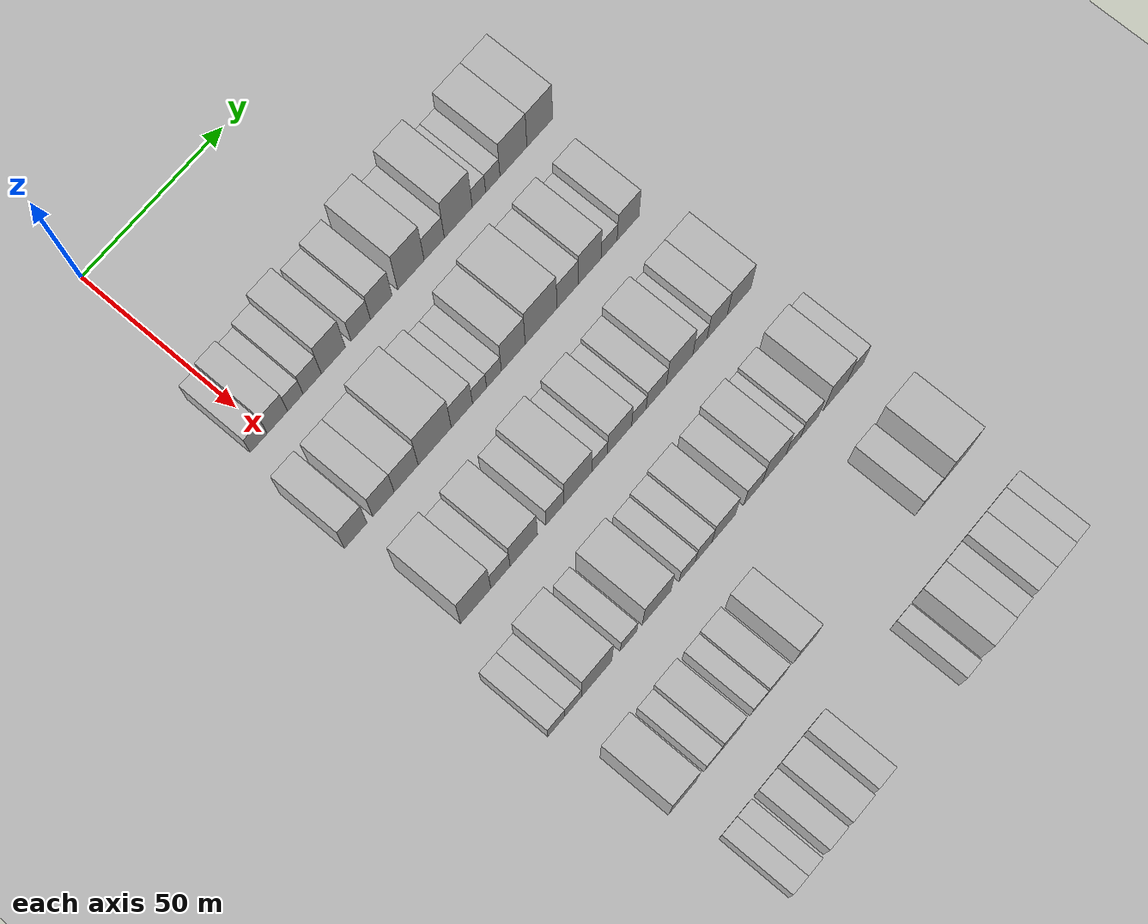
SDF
<sdf version="1.6">
 <world name="default">
  <include><name>ground_plane_1</name><uri>model://HANNAS_ground_plane</uri></include>
  <include>
   <name>ground_plane_2</name>
   <uri>model://HANNAS_ground_plane</uri>
   <pose>100 0 0  0 0 0</pose>
  </include>
  <model name="building_58">
   <static>1</static>
   <pose>50.0000 -3.0111 0 0.000000 0.000000 0.000000</pose>
   <link name="link">
    <pose>0 0 6.00 0 0 0</pose>
    <collision name="collision"><geometry><box><size>20.0000 5.9916 12.0000</size></box></geometry></collision>
    <visual name="visual">
     <cast_shadows>0</cast_shadows>
     <geometry><box><size>20.0000 5.9916 12.0000</size></box></geometry>
     <material>
      <script>
       <uri>model://HANNAS_wall/materials/scripts</uri>
       <uri>model://HANNAS_wall/materials/textures</uri>
       <name>vrc/HANNAS_wall</name>
      </script>
     </material>
    </visual>
   </link>
  </model>
  <model name="building_59">
   <static>1</static>
   <pose>50.0000 3.5411 0 0.000000 0.000000 0.000000</pose>
   <link name="link">
    <pose>0 0 7.50 0 0 0</pose>
    <collision name="collision"><geometry><box><size>20.0000 7.1128 15.0000</size></box></geometry></collision>
    <visual name="visual">
     <cast_shadows>0</cast_shadows>
     <geometry><box><size>20.0000 7.1128 15.0000</size></box></geometry>
     <material>
      <script>
       <uri>model://HANNAS_wall/materials/scripts</uri>
       <uri>model://HANNAS_wall/materials/textures</uri>
       <name>vrc/HANNAS_wall</name>
      </script>
     </material>
    </visual>
   </link>
  </model>
  <model name="building_60">
   <static>1</static>
   <pose>50.0000 9.8182 0 0.000000 0.000000 0.000000</pose>
   <link name="link">
    <pose>0 0 6.00 0 0 0</pose>
    <collision name="collision"><geometry><box><size>20.0000 5.4413 12.0000</size></box></geometry></collision>
    <visual name="visual">
     <cast_shadows>0</cast_shadows>
     <geometry><box><size>20.0000 5.4413 12.0000</size></box></geometry>
     <material>
      <script>
       <uri>model://HANNAS_wall/materials/scripts</uri>
       <uri>model://HANNAS_wall/materials/textures</uri>
       <name>vrc/HANNAS_wall</name>
      </script>
     </material>
    </visual>
   </link>
  </model>
  <model name="building_61">
   <static>1</static>
   <pose>50.0000 15.7599 0 0.000000 0.000000 0.000000</pose>
   <link name="link">
    <pose>0 0 7.50 0 0 0</pose>
    <collision name="collision"><geometry><box><size>20.0000 6.4422 15.0000</size></box></geometry></collision>
    <visual name="visual">
     <cast_shadows>0</cast_shadows>
     <geometry><box><size>20.0000 6.4422 15.0000</size></box></geometry>
     <material>
      <script>
       <uri>model://HANNAS_wall/materials/scripts</uri>
       <uri>model://HANNAS_wall/materials/textures</uri>
       <name>vrc/HANNAS_wall</name>
      </script>
     </material>
    </visual>
   </link>
  </model>
  <model name="building_62">
   <static>1</static>
   <pose>50.0000 23.2361 0 0.000000 0.000000 0.000000</pose>
   <link name="link">
    <pose>0 0 10.50 0 0 0</pose>
    <collision name="collision"><geometry><box><size>20.0000 8.5100 21.0000</size></box></geometry></collision>
    <visual name="visual">
     <cast_shadows>0</cast_shadows>
     <geometry><box><size>20.0000 8.5100 21.0000</size></box></geometry>
     <material>
      <script>
       <uri>model://HANNAS_wall/materials/scripts</uri>
       <uri>model://HANNAS_wall/materials/textures</uri>
       <name>vrc/HANNAS_wall</name>
      </script>
     </material>
    </visual>
   </link>
  </model>
  <model name="building_63">
   <static>1</static>
   <pose>50.0000 32.9809 0 0.000000 0.000000 0.000000</pose>
   <link name="link">
    <pose>0 0 7.50 0 0 0</pose>
    <collision name="collision"><geometry><box><size>20.0000 6.9796 15.0000</size></box></geometry></collision>
    <visual name="visual">
     <cast_shadows>0</cast_shadows>
     <geometry><box><size>20.0000 6.9796 15.0000</size></box></geometry>
     <material>
      <script>
       <uri>model://HANNAS_wall/materials/scripts</uri>
       <uri>model://HANNAS_wall/materials/textures</uri>
       <name>vrc/HANNAS_wall</name>
      </script>
     </material>
    </visual>
   </link>
  </model>
  <model name="building_64">
   <static>1</static>
   <pose>50.0000 40.3442 0 0.000000 0.000000 0.000000</pose>
   <link name="link">
    <pose>0 0 9.00 0 0 0</pose>
    <collision name="collision"><geometry><box><size>20.0000 7.7471 18.0000</size></box></geometry></collision>
    <visual name="visual">
     <cast_shadows>0</cast_shadows>
     <geometry><box><size>20.0000 7.7471 18.0000</size></box></geometry>
     <material>
      <script>
       <uri>model://HANNAS_wall/materials/scripts</uri>
       <uri>model://HANNAS_wall/materials/textures</uri>
       <name>vrc/HANNAS_wall</name>
      </script>
     </material>
    </visual>
   </link>
  </model>
  <model name="building_65">
   <static>1</static>
   <pose>50.0000 51.0409 0 0.000000 0.000000 0.000000</pose>
   <link name="link">
    <pose>0 0 12.00 0 0 0</pose>
    <collision name="collision"><geometry><box><size>20.0000 9.6463 24.0000</size></box></geometry></collision>
    <visual name="visual">
     <cast_shadows>0</cast_shadows>
     <geometry><box><size>20.0000 9.6463 24.0000</size></box></geometry>
     <material>
      <script>
       <uri>model://HANNAS_wall/materials/scripts</uri>
       <uri>model://HANNAS_wall/materials/textures</uri>
       <name>vrc/HANNAS_wall</name>
      </script>
     </material>
    </visual>
   </link>
  </model>
  <model name="building_66">
   <static>1</static>
   <pose>50.0000 59.5326 0 0.000000 0.000000 0.000000</pose>
   <link name="link">
    <pose>0 0 7.50 0 0 0</pose>
    <collision name="collision"><geometry><box><size>20.0000 7.3370 15.0000</size></box></geometry></collision>
    <visual name="visual">
     <cast_shadows>0</cast_shadows>
     <geometry><box><size>20.0000 7.3370 15.0000</size></box></geometry>
     <material>
      <script>
       <uri>model://HANNAS_wall/materials/scripts</uri>
       <uri>model://HANNAS_wall/materials/textures</uri>
       <name>vrc/HANNAS_wall</name>
      </script>
     </material>
    </visual>
   </link>
  </model>
  <model name="building_67">
   <static>1</static>
   <pose>50.0000 68.3051 0 0.000000 0.000000 0.000000</pose>
   <link name="link">
    <pose>0 0 12.00 0 0 0</pose>
    <collision name="collision"><geometry><box><size>20.0000 10.2081 24.0000</size></box></geometry></collision>
    <visual name="visual">
     <cast_shadows>0</cast_shadows>
     <geometry><box><size>20.0000 10.2081 24.0000</size></box></geometry>
     <material>
      <script>
       <uri>model://HANNAS_wall/materials/scripts</uri>
       <uri>model://HANNAS_wall/materials/textures</uri>
       <name>vrc/HANNAS_wall</name>
      </script>
     </material>
    </visual>
   </link>
  </model>
  <model name="building_68">
   <static>1</static>
   <pose>50.0000 75.8781 0 0.000000 0.000000 0.000000</pose>
   <link name="link">
    <pose>0 0 6.00 0 0 0</pose>
    <collision name="collision"><geometry><box><size>20.0000 4.9378 12.0000</size></box></geometry></collision>
    <visual name="visual">
     <cast_shadows>0</cast_shadows>
     <geometry><box><size>20.0000 4.9378 12.0000</size></box></geometry>
     <material>
      <script>
       <uri>model://HANNAS_wall/materials/scripts</uri>
       <uri>model://HANNAS_wall/materials/textures</uri>
       <name>vrc/HANNAS_wall</name>
      </script>
     </material>
    </visual>
   </link>
  </model>
  <model name="building_69">
   <static>1</static>
   <pose>50.0000 81.0055 0 0.000000 0.000000 0.000000</pose>
   <link name="link">
    <pose>0 0 6.00 0 0 0</pose>
    <collision name="collision"><geometry><box><size>20.0000 5.3171 12.0000</size></box></geometry></collision>
    <visual name="visual">
     <cast_shadows>0</cast_shadows>
     <geometry><box><size>20.0000 5.3171 12.0000</size></box></geometry>
     <material>
      <script>
       <uri>model://HANNAS_wall/materials/scripts</uri>
       <uri>model://HANNAS_wall/materials/textures</uri>
       <name>vrc/HANNAS_wall</name>
      </script>
     </material>
    </visual>
   </link>
  </model>
  <model name="building_70">
   <static>1</static>
   <pose>50.0000 88.6465 0 0.000000 0.000000 0.000000</pose>
   <link name="link">
    <pose>0 0 10.50 0 0 0</pose>
    <collision name="collision"><geometry><box><size>20.0000 9.9649 21.0000</size></box></geometry></collision>
    <visual name="visual">
     <cast_shadows>0</cast_shadows>
     <geometry><box><size>20.0000 9.9649 21.0000</size></box></geometry>
     <material>
      <script>
       <uri>model://HANNAS_wall/materials/scripts</uri>
       <uri>model://HANNAS_wall/materials/textures</uri>
       <name>vrc/HANNAS_wall</name>
      </script>
     </material>
    </visual>
   </link>
  </model>
  <model name="building_71">
   <static>1</static>
   <pose>50.0000 98.4130 0 0.000000 0.000000 0.000000</pose>
   <link name="link">
    <pose>0 0 10.50 0 0 0</pose>
    <collision name="collision"><geometry><box><size>20.0000 9.5681 21.0000</size></box></geometry></collision>
    <visual name="visual">
     <cast_shadows>0</cast_shadows>
     <geometry><box><size>20.0000 9.5681 21.0000</size></box></geometry>
     <material>
      <script>
       <uri>model://HANNAS_wall/materials/scripts</uri>
       <uri>model://HANNAS_wall/materials/textures</uri>
       <name>vrc/HANNAS_wall</name>
      </script>
     </material>
    </visual>
   </link>
  </model>
  <model name="building_184">
   <static>1</static>
   <pose>82.0000 -4.9444 0 0.000000 0.000000 0.000000</pose>
   <link name="link">
    <pose>0 0 9.00 0 0 0</pose>
    <collision name="collision"><geometry><box><size>20.0000 7.8636 18.0000</size></box></geometry></collision>
    <visual name="visual">
     <cast_shadows>0</cast_shadows>
     <geometry><box><size>20.0000 7.8636 18.0000</size></box></geometry>
     <material>
      <script>
       <uri>model://HANNAS_wall/materials/scripts</uri>
       <uri>model://HANNAS_wall/materials/textures</uri>
       <name>vrc/HANNAS_wall</name>
      </script>
     </material>
    </visual>
   </link>
  </model>
  <model name="building_185">
   <static>1</static>
   <pose>82.0000 4.7688 0 0.000000 0.000000 0.000000</pose>
   <link name="link">
    <pose>0 0 9.00 0 0 0</pose>
    <collision name="collision"><geometry><box><size>20.0000 7.5629 18.0000</size></box></geometry></collision>
    <visual name="visual">
     <cast_shadows>0</cast_shadows>
     <geometry><box><size>20.0000 7.5629 18.0000</size></box></geometry>
     <material>
      <script>
       <uri>model://HANNAS_wall/materials/scripts</uri>
       <uri>model://HANNAS_wall/materials/textures</uri>
       <name>vrc/HANNAS_wall</name>
      </script>
     </material>
    </visual>
   </link>
  </model>
  <model name="building_186">
   <static>1</static>
   <pose>82.0000 12.7990 0 0.000000 0.000000 0.000000</pose>
   <link name="link">
    <pose>0 0 9.00 0 0 0</pose>
    <collision name="collision"><geometry><box><size>20.0000 8.4974 18.0000</size></box></geometry></collision>
    <visual name="visual">
     <cast_shadows>0</cast_shadows>
     <geometry><box><size>20.0000 8.4974 18.0000</size></box></geometry>
     <material>
      <script>
       <uri>model://HANNAS_wall/materials/scripts</uri>
       <uri>model://HANNAS_wall/materials/textures</uri>
       <name>vrc/HANNAS_wall</name>
      </script>
     </material>
    </visual>
   </link>
  </model>
  <model name="building_187">
   <static>1</static>
   <pose>82.0000 22.9458 0 0.000000 0.000000 0.000000</pose>
   <link name="link">
    <pose>0 0 12.00 0 0 0</pose>
    <collision name="collision"><geometry><box><size>20.0000 11.7962 24.0000</size></box></geometry></collision>
    <visual name="visual">
     <cast_shadows>0</cast_shadows>
     <geometry><box><size>20.0000 11.7962 24.0000</size></box></geometry>
     <material>
      <script>
       <uri>model://HANNAS_wall/materials/scripts</uri>
       <uri>model://HANNAS_wall/materials/textures</uri>
       <name>vrc/HANNAS_wall</name>
      </script>
     </material>
    </visual>
   </link>
  </model>
  <model name="building_188">
   <static>1</static>
   <pose>82.0000 32.6362 0 0.000000 0.000000 0.000000</pose>
   <link name="link">
    <pose>0 0 9.00 0 0 0</pose>
    <collision name="collision"><geometry><box><size>20.0000 7.5846 18.0000</size></box></geometry></collision>
    <visual name="visual">
     <cast_shadows>0</cast_shadows>
     <geometry><box><size>20.0000 7.5846 18.0000</size></box></geometry>
     <material>
      <script>
       <uri>model://HANNAS_wall/materials/scripts</uri>
       <uri>model://HANNAS_wall/materials/textures</uri>
       <name>vrc/HANNAS_wall</name>
      </script>
     </material>
    </visual>
   </link>
  </model>
  <model name="building_189">
   <static>1</static>
   <pose>82.0000 38.9619 0 0.000000 0.000000 0.000000</pose>
   <link name="link">
    <pose>0 0 6.00 0 0 0</pose>
    <collision name="collision"><geometry><box><size>20.0000 5.0670 12.0000</size></box></geometry></collision>
    <visual name="visual">
     <cast_shadows>0</cast_shadows>
     <geometry><box><size>20.0000 5.0670 12.0000</size></box></geometry>
     <material>
      <script>
       <uri>model://HANNAS_wall/materials/scripts</uri>
       <uri>model://HANNAS_wall/materials/textures</uri>
       <name>vrc/HANNAS_wall</name>
      </script>
     </material>
    </visual>
   </link>
  </model>
  <model name="building_190">
   <static>1</static>
   <pose>82.0000 44.1706 0 0.000000 0.000000 0.000000</pose>
   <link name="link">
    <pose>0 0 6.00 0 0 0</pose>
    <collision name="collision"><geometry><box><size>20.0000 5.3503 12.0000</size></box></geometry></collision>
    <visual name="visual">
     <cast_shadows>0</cast_shadows>
     <geometry><box><size>20.0000 5.3503 12.0000</size></box></geometry>
     <material>
      <script>
       <uri>model://HANNAS_wall/materials/scripts</uri>
       <uri>model://HANNAS_wall/materials/textures</uri>
       <name>vrc/HANNAS_wall</name>
      </script>
     </material>
    </visual>
   </link>
  </model>
  <model name="building_191">
   <static>1</static>
   <pose>82.0000 51.1586 0 0.000000 0.000000 0.000000</pose>
   <link name="link">
    <pose>0 0 10.50 0 0 0</pose>
    <collision name="collision"><geometry><box><size>20.0000 8.6258 21.0000</size></box></geometry></collision>
    <visual name="visual">
     <cast_shadows>0</cast_shadows>
     <geometry><box><size>20.0000 8.6258 21.0000</size></box></geometry>
     <material>
      <script>
       <uri>model://HANNAS_wall/materials/scripts</uri>
       <uri>model://HANNAS_wall/materials/textures</uri>
       <name>vrc/HANNAS_wall</name>
      </script>
     </material>
    </visual>
   </link>
  </model>
  <model name="building_192">
   <static>1</static>
   <pose>82.0000 61.2488 0 0.000000 0.000000 0.000000</pose>
   <link name="link">
    <pose>0 0 12.00 0 0 0</pose>
    <collision name="collision"><geometry><box><size>20.0000 11.5545 24.0000</size></box></geometry></collision>
    <visual name="visual">
     <cast_shadows>0</cast_shadows>
     <geometry><box><size>20.0000 11.5545 24.0000</size></box></geometry>
     <material>
      <script>
       <uri>model://HANNAS_wall/materials/scripts</uri>
       <uri>model://HANNAS_wall/materials/textures</uri>
       <name>vrc/HANNAS_wall</name>
      </script>
     </material>
    </visual>
   </link>
  </model>
  <model name="building_193">
   <static>1</static>
   <pose>82.0000 70.9507 0 0.000000 0.000000 0.000000</pose>
   <link name="link">
    <pose>0 0 9.00 0 0 0</pose>
    <collision name="collision"><geometry><box><size>20.0000 7.8493 18.0000</size></box></geometry></collision>
    <visual name="visual">
     <cast_shadows>0</cast_shadows>
     <geometry><box><size>20.0000 7.8493 18.0000</size></box></geometry>
     <material>
      <script>
       <uri>model://HANNAS_wall/materials/scripts</uri>
       <uri>model://HANNAS_wall/materials/textures</uri>
       <name>vrc/HANNAS_wall</name>
      </script>
     </material>
    </visual>
   </link>
  </model>
  <model name="building_194">
   <static>1</static>
   <pose>82.0000 79.1147 0 0.000000 0.000000 0.000000</pose>
   <link name="link">
    <pose>0 0 10.50 0 0 0</pose>
    <collision name="collision"><geometry><box><size>20.0000 8.4789 21.0000</size></box></geometry></collision>
    <visual name="visual">
     <cast_shadows>0</cast_shadows>
     <geometry><box><size>20.0000 8.4789 21.0000</size></box></geometry>
     <material>
      <script>
       <uri>model://HANNAS_wall/materials/scripts</uri>
       <uri>model://HANNAS_wall/materials/textures</uri>
       <name>vrc/HANNAS_wall</name>
      </script>
     </material>
    </visual>
   </link>
  </model>
  <model name="building_195">
   <static>1</static>
   <pose>82.0000 86.3496 0 0.000000 0.000000 0.000000</pose>
   <link name="link">
    <pose>0 0 6.00 0 0 0</pose>
    <collision name="collision"><geometry><box><size>20.0000 5.9908 12.0000</size></box></geometry></collision>
    <visual name="visual">
     <cast_shadows>0</cast_shadows>
     <geometry><box><size>20.0000 5.9908 12.0000</size></box></geometry>
     <material>
      <script>
       <uri>model://HANNAS_wall/materials/scripts</uri>
       <uri>model://HANNAS_wall/materials/textures</uri>
       <name>vrc/HANNAS_wall</name>
      </script>
     </material>
    </visual>
   </link>
  </model>
  <model name="building_196">
   <static>1</static>
   <pose>82.0000 93.4408 0 0.000000 0.000000 0.000000</pose>
   <link name="link">
    <pose>0 0 9.00 0 0 0</pose>
    <collision name="collision"><geometry><box><size>20.0000 8.1917 18.0000</size></box></geometry></collision>
    <visual name="visual">
     <cast_shadows>0</cast_shadows>
     <geometry><box><size>20.0000 8.1917 18.0000</size></box></geometry>
     <material>
      <script>
       <uri>model://HANNAS_wall/materials/scripts</uri>
       <uri>model://HANNAS_wall/materials/textures</uri>
       <name>vrc/HANNAS_wall</name>
      </script>
     </material>
    </visual>
   </link>
  </model>
  <model name="building_308">
   <static>1</static>
   <pose>114.0000 0.4397 0 0.000000 0.000000 0.000000</pose>
   <link name="link">
    <pose>0 0 12.00 0 0 0</pose>
    <collision name="collision"><geometry><box><size>20.0000 10.6432 24.0000</size></box></geometry></collision>
    <visual name="visual">
     <cast_shadows>0</cast_shadows>
     <geometry><box><size>20.0000 10.6432 24.0000</size></box></geometry>
     <material>
      <script>
       <uri>model://HANNAS_wall/materials/scripts</uri>
       <uri>model://HANNAS_wall/materials/textures</uri>
       <name>vrc/HANNAS_wall</name>
      </script>
     </material>
    </visual>
   </link>
  </model>
  <model name="building_309">
   <static>1</static>
   <pose>114.0000 9.1565 0 0.000000 0.000000 0.000000</pose>
   <link name="link">
    <pose>0 0 7.50 0 0 0</pose>
    <collision name="collision"><geometry><box><size>20.0000 6.7905 15.0000</size></box></geometry></collision>
    <visual name="visual">
     <cast_shadows>0</cast_shadows>
     <geometry><box><size>20.0000 6.7905 15.0000</size></box></geometry>
     <material>
      <script>
       <uri>model://HANNAS_wall/materials/scripts</uri>
       <uri>model://HANNAS_wall/materials/textures</uri>
       <name>vrc/HANNAS_wall</name>
      </script>
     </material>
    </visual>
   </link>
  </model>
  <model name="building_310">
   <static>1</static>
   <pose>114.0000 17.4340 0 0.000000 0.000000 0.000000</pose>
   <link name="link">
    <pose>0 0 10.50 0 0 0</pose>
    <collision name="collision"><geometry><box><size>20.0000 9.7644 21.0000</size></box></geometry></collision>
    <visual name="visual">
     <cast_shadows>0</cast_shadows>
     <geometry><box><size>20.0000 9.7644 21.0000</size></box></geometry>
     <material>
      <script>
       <uri>model://HANNAS_wall/materials/scripts</uri>
       <uri>model://HANNAS_wall/materials/textures</uri>
       <name>vrc/HANNAS_wall</name>
      </script>
     </material>
    </visual>
   </link>
  </model>
  <model name="building_311">
   <static>1</static>
   <pose>114.0000 28.5110 0 0.000000 0.000000 0.000000</pose>
   <link name="link">
    <pose>0 0 7.50 0 0 0</pose>
    <collision name="collision"><geometry><box><size>20.0000 6.3897 15.0000</size></box></geometry></collision>
    <visual name="visual">
     <cast_shadows>0</cast_shadows>
     <geometry><box><size>20.0000 6.3897 15.0000</size></box></geometry>
     <material>
      <script>
       <uri>model://HANNAS_wall/materials/scripts</uri>
       <uri>model://HANNAS_wall/materials/textures</uri>
       <name>vrc/HANNAS_wall</name>
      </script>
     </material>
    </visual>
   </link>
  </model>
  <model name="building_312">
   <static>1</static>
   <pose>114.0000 36.7295 0 0.000000 0.000000 0.000000</pose>
   <link name="link">
    <pose>0 0 10.50 0 0 0</pose>
    <collision name="collision"><geometry><box><size>20.0000 10.0473 21.0000</size></box></geometry></collision>
    <visual name="visual">
     <cast_shadows>0</cast_shadows>
     <geometry><box><size>20.0000 10.0473 21.0000</size></box></geometry>
     <material>
      <script>
       <uri>model://HANNAS_wall/materials/scripts</uri>
       <uri>model://HANNAS_wall/materials/textures</uri>
       <name>vrc/HANNAS_wall</name>
      </script>
     </material>
    </visual>
   </link>
  </model>
  <model name="building_313">
   <static>1</static>
   <pose>114.0000 44.5752 0 0.000000 0.000000 0.000000</pose>
   <link name="link">
    <pose>0 0 6.00 0 0 0</pose>
    <collision name="collision"><geometry><box><size>20.0000 5.6441 12.0000</size></box></geometry></collision>
    <visual name="visual">
     <cast_shadows>0</cast_shadows>
     <geometry><box><size>20.0000 5.6441 12.0000</size></box></geometry>
     <material>
      <script>
       <uri>model://HANNAS_wall/materials/scripts</uri>
       <uri>model://HANNAS_wall/materials/textures</uri>
       <name>vrc/HANNAS_wall</name>
      </script>
     </material>
    </visual>
   </link>
  </model>
  <model name="building_314">
   <static>1</static>
   <pose>114.0000 51.8392 0 0.000000 0.000000 0.000000</pose>
   <link name="link">
    <pose>0 0 9.00 0 0 0</pose>
    <collision name="collision"><geometry><box><size>20.0000 8.8838 18.0000</size></box></geometry></collision>
    <visual name="visual">
     <cast_shadows>0</cast_shadows>
     <geometry><box><size>20.0000 8.8838 18.0000</size></box></geometry>
     <material>
      <script>
       <uri>model://HANNAS_wall/materials/scripts</uri>
       <uri>model://HANNAS_wall/materials/textures</uri>
       <name>vrc/HANNAS_wall</name>
      </script>
     </material>
    </visual>
   </link>
  </model>
  <model name="building_315">
   <static>1</static>
   <pose>114.0000 58.9408 0 0.000000 0.000000 0.000000</pose>
   <link name="link">
    <pose>0 0 6.00 0 0 0</pose>
    <collision name="collision"><geometry><box><size>20.0000 5.3193 12.0000</size></box></geometry></collision>
    <visual name="visual">
     <cast_shadows>0</cast_shadows>
     <geometry><box><size>20.0000 5.3193 12.0000</size></box></geometry>
     <material>
      <script>
       <uri>model://HANNAS_wall/materials/scripts</uri>
       <uri>model://HANNAS_wall/materials/textures</uri>
       <name>vrc/HANNAS_wall</name>
      </script>
     </material>
    </visual>
   </link>
  </model>
  <model name="building_316">
   <static>1</static>
   <pose>114.0000 65.3334 0 0.000000 0.000000 0.000000</pose>
   <link name="link">
    <pose>0 0 7.50 0 0 0</pose>
    <collision name="collision"><geometry><box><size>20.0000 7.4659 15.0000</size></box></geometry></collision>
    <visual name="visual">
     <cast_shadows>0</cast_shadows>
     <geometry><box><size>20.0000 7.4659 15.0000</size></box></geometry>
     <material>
      <script>
       <uri>model://HANNAS_wall/materials/scripts</uri>
       <uri>model://HANNAS_wall/materials/textures</uri>
       <name>vrc/HANNAS_wall</name>
      </script>
     </material>
    </visual>
   </link>
  </model>
  <model name="building_317">
   <static>1</static>
   <pose>114.0000 73.9648 0 0.000000 0.000000 0.000000</pose>
   <link name="link">
    <pose>0 0 10.50 0 0 0</pose>
    <collision name="collision"><geometry><box><size>20.0000 9.7970 21.0000</size></box></geometry></collision>
    <visual name="visual">
     <cast_shadows>0</cast_shadows>
     <geometry><box><size>20.0000 9.7970 21.0000</size></box></geometry>
     <material>
      <script>
       <uri>model://HANNAS_wall/materials/scripts</uri>
       <uri>model://HANNAS_wall/materials/textures</uri>
       <name>vrc/HANNAS_wall</name>
      </script>
     </material>
    </visual>
   </link>
  </model>
  <model name="building_318">
   <static>1</static>
   <pose>114.0000 81.5324 0 0.000000 0.000000 0.000000</pose>
   <link name="link">
    <pose>0 0 6.00 0 0 0</pose>
    <collision name="collision"><geometry><box><size>20.0000 5.3382 12.0000</size></box></geometry></collision>
    <visual name="visual">
     <cast_shadows>0</cast_shadows>
     <geometry><box><size>20.0000 5.3382 12.0000</size></box></geometry>
     <material>
      <script>
       <uri>model://HANNAS_wall/materials/scripts</uri>
       <uri>model://HANNAS_wall/materials/textures</uri>
       <name>vrc/HANNAS_wall</name>
      </script>
     </material>
    </visual>
   </link>
  </model>
  <model name="building_319">
   <static>1</static>
   <pose>114.0000 87.9860 0 0.000000 0.000000 0.000000</pose>
   <link name="link">
    <pose>0 0 9.00 0 0 0</pose>
    <collision name="collision"><geometry><box><size>20.0000 7.5690 18.0000</size></box></geometry></collision>
    <visual name="visual">
     <cast_shadows>0</cast_shadows>
     <geometry><box><size>20.0000 7.5690 18.0000</size></box></geometry>
     <material>
      <script>
       <uri>model://HANNAS_wall/materials/scripts</uri>
       <uri>model://HANNAS_wall/materials/textures</uri>
       <name>vrc/HANNAS_wall</name>
      </script>
     </material>
    </visual>
   </link>
  </model>
  <model name="building_320">
   <static>1</static>
   <pose>114.0000 96.2046 0 0.000000 0.000000 0.000000</pose>
   <link name="link">
    <pose>0 0 9.00 0 0 0</pose>
    <collision name="collision"><geometry><box><size>20.0000 8.8681 18.0000</size></box></geometry></collision>
    <visual name="visual">
     <cast_shadows>0</cast_shadows>
     <geometry><box><size>20.0000 8.8681 18.0000</size></box></geometry>
     <material>
      <script>
       <uri>model://HANNAS_wall/materials/scripts</uri>
       <uri>model://HANNAS_wall/materials/textures</uri>
       <name>vrc/HANNAS_wall</name>
      </script>
     </material>
    </visual>
   </link>
  </model>
  <model name="building_428">
   <static>1</static>
   <pose>146.0000 -8.7272 0 0.000000 0.000000 0.000000</pose>
   <link name="link">
    <pose>0 0 6.00 0 0 0</pose>
    <collision name="collision"><geometry><box><size>20.0000 5.9790 12.0000</size></box></geometry></collision>
    <visual name="visual">
     <cast_shadows>0</cast_shadows>
     <geometry><box><size>20.0000 5.9790 12.0000</size></box></geometry>
     <material>
      <script>
       <uri>model://HANNAS_wall/materials/scripts</uri>
       <uri>model://HANNAS_wall/materials/textures</uri>
       <name>vrc/HANNAS_wall</name>
      </script>
     </material>
    </visual>
   </link>
  </model>
  <model name="building_429">
   <static>1</static>
   <pose>146.0000 -2.8627 0 0.000000 0.000000 0.000000</pose>
   <link name="link">
    <pose>0 0 6.00 0 0 0</pose>
    <collision name="collision"><geometry><box><size>20.0000 5.7501 12.0000</size></box></geometry></collision>
    <visual name="visual">
     <cast_shadows>0</cast_shadows>
     <geometry><box><size>20.0000 5.7501 12.0000</size></box></geometry>
     <material>
      <script>
       <uri>model://HANNAS_wall/materials/scripts</uri>
       <uri>model://HANNAS_wall/materials/textures</uri>
       <name>vrc/HANNAS_wall</name>
      </script>
     </material>
    </visual>
   </link>
  </model>
  <model name="building_430">
   <static>1</static>
   <pose>146.0000 5.4091 0 0.000000 0.000000 0.000000</pose>
   <link name="link">
    <pose>0 0 12.00 0 0 0</pose>
    <collision name="collision"><geometry><box><size>20.0000 10.7934 24.0000</size></box></geometry></collision>
    <visual name="visual">
     <cast_shadows>0</cast_shadows>
     <geometry><box><size>20.0000 10.7934 24.0000</size></box></geometry>
     <material>
      <script>
       <uri>model://HANNAS_wall/materials/scripts</uri>
       <uri>model://HANNAS_wall/materials/textures</uri>
       <name>vrc/HANNAS_wall</name>
      </script>
     </material>
    </visual>
   </link>
  </model>
  <model name="building_431">
   <static>1</static>
   <pose>146.0000 16.7544 0 0.000000 0.000000 0.000000</pose>
   <link name="link">
    <pose>0 0 6.00 0 0 0</pose>
    <collision name="collision"><geometry><box><size>20.0000 5.8972 12.0000</size></box></geometry></collision>
    <visual name="visual">
     <cast_shadows>0</cast_shadows>
     <geometry><box><size>20.0000 5.8972 12.0000</size></box></geometry>
     <material>
      <script>
       <uri>model://HANNAS_wall/materials/scripts</uri>
       <uri>model://HANNAS_wall/materials/textures</uri>
       <name>vrc/HANNAS_wall</name>
      </script>
     </material>
    </visual>
   </link>
  </model>
  <model name="building_432">
   <static>1</static>
   <pose>146.0000 26.8201 0 0.000000 0.000000 0.000000</pose>
   <link name="link">
    <pose>0 0 10.50 0 0 0</pose>
    <collision name="collision"><geometry><box><size>20.0000 10.2344 21.0000</size></box></geometry></collision>
    <visual name="visual">
     <cast_shadows>0</cast_shadows>
     <geometry><box><size>20.0000 10.2344 21.0000</size></box></geometry>
     <material>
      <script>
       <uri>model://HANNAS_wall/materials/scripts</uri>
       <uri>model://HANNAS_wall/materials/textures</uri>
       <name>vrc/HANNAS_wall</name>
      </script>
     </material>
    </visual>
   </link>
  </model>
  <model name="building_433">
   <static>1</static>
   <pose>146.0000 37.8797 0 0.000000 0.000000 0.000000</pose>
   <link name="link">
    <pose>0 0 6.00 0 0 0</pose>
    <collision name="collision"><geometry><box><size>20.0000 5.8847 12.0000</size></box></geometry></collision>
    <visual name="visual">
     <cast_shadows>0</cast_shadows>
     <geometry><box><size>20.0000 5.8847 12.0000</size></box></geometry>
     <material>
      <script>
       <uri>model://HANNAS_wall/materials/scripts</uri>
       <uri>model://HANNAS_wall/materials/textures</uri>
       <name>vrc/HANNAS_wall</name>
      </script>
     </material>
    </visual>
   </link>
  </model>
  <model name="building_434">
   <static>1</static>
   <pose>146.0000 43.8314 0 0.000000 0.000000 0.000000</pose>
   <link name="link">
    <pose>0 0 7.50 0 0 0</pose>
    <collision name="collision"><geometry><box><size>20.0000 6.0187 15.0000</size></box></geometry></collision>
    <visual name="visual">
     <cast_shadows>0</cast_shadows>
     <geometry><box><size>20.0000 6.0187 15.0000</size></box></geometry>
     <material>
      <script>
       <uri>model://HANNAS_wall/materials/scripts</uri>
       <uri>model://HANNAS_wall/materials/textures</uri>
       <name>vrc/HANNAS_wall</name>
      </script>
     </material>
    </visual>
   </link>
  </model>
  <model name="building_435">
   <static>1</static>
   <pose>146.0000 51.1432 0 0.000000 0.000000 0.000000</pose>
   <link name="link">
    <pose>0 0 9.00 0 0 0</pose>
    <collision name="collision"><geometry><box><size>20.0000 8.6048 18.0000</size></box></geometry></collision>
    <visual name="visual">
     <cast_shadows>0</cast_shadows>
     <geometry><box><size>20.0000 8.6048 18.0000</size></box></geometry>
     <material>
      <script>
       <uri>model://HANNAS_wall/materials/scripts</uri>
       <uri>model://HANNAS_wall/materials/textures</uri>
       <name>vrc/HANNAS_wall</name>
      </script>
     </material>
    </visual>
   </link>
  </model>
  <model name="building_436">
   <static>1</static>
   <pose>146.0000 61.9069 0 0.000000 0.000000 0.000000</pose>
   <link name="link">
    <pose>0 0 7.50 0 0 0</pose>
    <collision name="collision"><geometry><box><size>20.0000 6.9225 15.0000</size></box></geometry></collision>
    <visual name="visual">
     <cast_shadows>0</cast_shadows>
     <geometry><box><size>20.0000 6.9225 15.0000</size></box></geometry>
     <material>
      <script>
       <uri>model://HANNAS_wall/materials/scripts</uri>
       <uri>model://HANNAS_wall/materials/textures</uri>
       <name>vrc/HANNAS_wall</name>
      </script>
     </material>
    </visual>
   </link>
  </model>
  <model name="building_437">
   <static>1</static>
   <pose>146.0000 69.7431 0 0.000000 0.000000 0.000000</pose>
   <link name="link">
    <pose>0 0 10.50 0 0 0</pose>
    <collision name="collision"><geometry><box><size>20.0000 8.7500 21.0000</size></box></geometry></collision>
    <visual name="visual">
     <cast_shadows>0</cast_shadows>
     <geometry><box><size>20.0000 8.7500 21.0000</size></box></geometry>
     <material>
      <script>
       <uri>model://HANNAS_wall/materials/scripts</uri>
       <uri>model://HANNAS_wall/materials/textures</uri>
       <name>vrc/HANNAS_wall</name>
      </script>
     </material>
    </visual>
   </link>
  </model>
  <model name="building_438">
   <static>1</static>
   <pose>146.0000 76.8189 0 0.000000 0.000000 0.000000</pose>
   <link name="link">
    <pose>0 0 6.00 0 0 0</pose>
    <collision name="collision"><geometry><box><size>20.0000 5.4017 12.0000</size></box></geometry></collision>
    <visual name="visual">
     <cast_shadows>0</cast_shadows>
     <geometry><box><size>20.0000 5.4017 12.0000</size></box></geometry>
     <material>
      <script>
       <uri>model://HANNAS_wall/materials/scripts</uri>
       <uri>model://HANNAS_wall/materials/textures</uri>
       <name>vrc/HANNAS_wall</name>
      </script>
     </material>
    </visual>
   </link>
  </model>
  <model name="building_439">
   <static>1</static>
   <pose>146.0000 82.8689 0 0.000000 0.000000 0.000000</pose>
   <link name="link">
    <pose>0 0 7.50 0 0 0</pose>
    <collision name="collision"><geometry><box><size>20.0000 6.6982 15.0000</size></box></geometry></collision>
    <visual name="visual">
     <cast_shadows>0</cast_shadows>
     <geometry><box><size>20.0000 6.6982 15.0000</size></box></geometry>
     <material>
      <script>
       <uri>model://HANNAS_wall/materials/scripts</uri>
       <uri>model://HANNAS_wall/materials/textures</uri>
       <name>vrc/HANNAS_wall</name>
      </script>
     </material>
    </visual>
   </link>
  </model>
  <model name="building_440">
   <static>1</static>
   <pose>146.0000 92.6695 0 0.000000 0.000000 0.000000</pose>
   <link name="link">
    <pose>0 0 10.50 0 0 0</pose>
    <collision name="collision"><geometry><box><size>20.0000 8.9031 21.0000</size></box></geometry></collision>
    <visual name="visual">
     <cast_shadows>0</cast_shadows>
     <geometry><box><size>20.0000 8.9031 21.0000</size></box></geometry>
     <material>
      <script>
       <uri>model://HANNAS_wall/materials/scripts</uri>
       <uri>model://HANNAS_wall/materials/textures</uri>
       <name>vrc/HANNAS_wall</name>
      </script>
     </material>
    </visual>
   </link>
  </model>
  <model name="building_441">
   <static>1</static>
   <pose>146.0000 100.2378 0 0.000000 0.000000 0.000000</pose>
   <link name="link">
    <pose>0 0 7.50 0 0 0</pose>
    <collision name="collision"><geometry><box><size>20.0000 6.2336 15.0000</size></box></geometry></collision>
    <visual name="visual">
     <cast_shadows>0</cast_shadows>
     <geometry><box><size>20.0000 6.2336 15.0000</size></box></geometry>
     <material>
      <script>
       <uri>model://HANNAS_wall/materials/scripts</uri>
       <uri>model://HANNAS_wall/materials/textures</uri>
       <name>vrc/HANNAS_wall</name>
      </script>
     </material>
    </visual>
   </link>
  </model>
  <model name="building_550">
   <static>1</static>
   <pose>178.0000 -2.8624 0 0.000000 0.000000 0.000000</pose>
   <link name="link">
    <pose>0 0 12.00 0 0 0</pose>
    <collision name="collision"><geometry><box><size>20.0000 9.6435 24.0000</size></box></geometry></collision>
    <visual name="visual">
     <cast_shadows>0</cast_shadows>
     <geometry><box><size>20.0000 9.6435 24.0000</size></box></geometry>
     <material>
      <script>
       <uri>model://HANNAS_wall/materials/scripts</uri>
       <uri>model://HANNAS_wall/materials/textures</uri>
       <name>vrc/HANNAS_wall</name>
      </script>
     </material>
    </visual>
   </link>
  </model>
  <model name="building_551">
   <static>1</static>
   <pose>178.0000 7.7741 0 0.000000 0.000000 0.000000</pose>
   <link name="link">
    <pose>0 0 6.00 0 0 0</pose>
    <collision name="collision"><geometry><box><size>20.0000 5.6296 12.0000</size></box></geometry></collision>
    <visual name="visual">
     <cast_shadows>0</cast_shadows>
     <geometry><box><size>20.0000 5.6296 12.0000</size></box></geometry>
     <material>
      <script>
       <uri>model://HANNAS_wall/materials/scripts</uri>
       <uri>model://HANNAS_wall/materials/textures</uri>
       <name>vrc/HANNAS_wall</name>
      </script>
     </material>
    </visual>
   </link>
  </model>
  <model name="building_552">
   <static>1</static>
   <pose>178.0000 14.5071 0 0.000000 0.000000 0.000000</pose>
   <link name="link">
    <pose>0 0 9.00 0 0 0</pose>
    <collision name="collision"><geometry><box><size>20.0000 7.8363 18.0000</size></box></geometry></collision>
    <visual name="visual">
     <cast_shadows>0</cast_shadows>
     <geometry><box><size>20.0000 7.8363 18.0000</size></box></geometry>
     <material>
      <script>
       <uri>model://HANNAS_wall/materials/scripts</uri>
       <uri>model://HANNAS_wall/materials/textures</uri>
       <name>vrc/HANNAS_wall</name>
      </script>
     </material>
    </visual>
   </link>
  </model>
  <model name="building_553">
   <static>1</static>
   <pose>178.0000 24.1129 0 0.000000 0.000000 0.000000</pose>
   <link name="link">
    <pose>0 0 6.00 0 0 0</pose>
    <collision name="collision"><geometry><box><size>20.0000 5.3753 12.0000</size></box></geometry></collision>
    <visual name="visual">
     <cast_shadows>0</cast_shadows>
     <geometry><box><size>20.0000 5.3753 12.0000</size></box></geometry>
     <material>
      <script>
       <uri>model://HANNAS_wall/materials/scripts</uri>
       <uri>model://HANNAS_wall/materials/textures</uri>
       <name>vrc/HANNAS_wall</name>
      </script>
     </material>
    </visual>
   </link>
  </model>
  <model name="building_554">
   <static>1</static>
   <pose>178.0000 30.4271 0 0.000000 0.000000 0.000000</pose>
   <link name="link">
    <pose>0 0 7.50 0 0 0</pose>
    <collision name="collision"><geometry><box><size>20.0000 7.2530 15.0000</size></box></geometry></collision>
    <visual name="visual">
     <cast_shadows>0</cast_shadows>
     <geometry><box><size>20.0000 7.2530 15.0000</size></box></geometry>
     <material>
      <script>
       <uri>model://HANNAS_wall/materials/scripts</uri>
       <uri>model://HANNAS_wall/materials/textures</uri>
       <name>vrc/HANNAS_wall</name>
      </script>
     </material>
    </visual>
   </link>
  </model>
  <model name="building_555">
   <static>1</static>
   <pose>178.0000 41.0652 0 0.000000 0.000000 0.000000</pose>
   <link name="link">
    <pose>0 0 9.00 0 0 0</pose>
    <collision name="collision"><geometry><box><size>20.0000 8.0232 18.0000</size></box></geometry></collision>
    <visual name="visual">
     <cast_shadows>0</cast_shadows>
     <geometry><box><size>20.0000 8.0232 18.0000</size></box></geometry>
     <material>
      <script>
       <uri>model://HANNAS_wall/materials/scripts</uri>
       <uri>model://HANNAS_wall/materials/textures</uri>
       <name>vrc/HANNAS_wall</name>
      </script>
     </material>
    </visual>
   </link>
  </model>
  <model name="building_556">
   <static>1</static>
   <pose>178.0000 85.7988 0 0.000000 0.000000 0.000000</pose>
   <link name="link">
    <pose>0 0 7.50 0 0 0</pose>
    <collision name="collision"><geometry><box><size>20.0000 7.1480 15.0000</size></box></geometry></collision>
    <visual name="visual">
     <cast_shadows>0</cast_shadows>
     <geometry><box><size>20.0000 7.1480 15.0000</size></box></geometry>
     <material>
      <script>
       <uri>model://HANNAS_wall/materials/scripts</uri>
       <uri>model://HANNAS_wall/materials/textures</uri>
       <name>vrc/HANNAS_wall</name>
      </script>
     </material>
    </visual>
   </link>
  </model>
  <model name="building_557">
   <static>1</static>
   <pose>178.0000 96.6745 0 0.000000 0.000000 0.000000</pose>
   <link name="link">
    <pose>0 0 12.00 0 0 0</pose>
    <collision name="collision"><geometry><box><size>20.0000 10.6033 24.0000</size></box></geometry></collision>
    <visual name="visual">
     <cast_shadows>0</cast_shadows>
     <geometry><box><size>20.0000 10.6033 24.0000</size></box></geometry>
     <material>
      <script>
       <uri>model://HANNAS_wall/materials/scripts</uri>
       <uri>model://HANNAS_wall/materials/textures</uri>
       <name>vrc/HANNAS_wall</name>
      </script>
     </material>
    </visual>
   </link>
  </model>
  <model name="building_670">
   <static>1</static>
   <pose>210.0000 -1.7755 0 0.000000 0.000000 0.000000</pose>
   <link name="link">
    <pose>0 0 6.00 0 0 0</pose>
    <collision name="collision"><geometry><box><size>20.0000 5.3378 12.0000</size></box></geometry></collision>
    <visual name="visual">
     <cast_shadows>0</cast_shadows>
     <geometry><box><size>20.0000 5.3378 12.0000</size></box></geometry>
     <material>
      <script>
       <uri>model://HANNAS_wall/materials/scripts</uri>
       <uri>model://HANNAS_wall/materials/textures</uri>
       <name>vrc/HANNAS_wall</name>
      </script>
     </material>
    </visual>
   </link>
  </model>
  <model name="building_671">
   <static>1</static>
   <pose>210.0000 3.4150 0 0.000000 0.000000 0.000000</pose>
   <link name="link">
    <pose>0 0 6.00 0 0 0</pose>
    <collision name="collision"><geometry><box><size>20.0000 5.0431 12.0000</size></box></geometry></collision>
    <visual name="visual">
     <cast_shadows>0</cast_shadows>
     <geometry><box><size>20.0000 5.0431 12.0000</size></box></geometry>
     <material>
      <script>
       <uri>model://HANNAS_wall/materials/scripts</uri>
       <uri>model://HANNAS_wall/materials/textures</uri>
       <name>vrc/HANNAS_wall</name>
      </script>
     </material>
    </visual>
   </link>
  </model>
  <model name="building_672">
   <static>1</static>
   <pose>210.0000 11.1744 0 0.000000 0.000000 0.000000</pose>
   <link name="link">
    <pose>0 0 7.50 0 0 0</pose>
    <collision name="collision"><geometry><box><size>20.0000 6.4756 15.0000</size></box></geometry></collision>
    <visual name="visual">
     <cast_shadows>0</cast_shadows>
     <geometry><box><size>20.0000 6.4756 15.0000</size></box></geometry>
     <material>
      <script>
       <uri>model://HANNAS_wall/materials/scripts</uri>
       <uri>model://HANNAS_wall/materials/textures</uri>
       <name>vrc/HANNAS_wall</name>
      </script>
     </material>
    </visual>
   </link>
  </model>
  <model name="building_673">
   <static>1</static>
   <pose>210.0000 19.2625 0 0.000000 0.000000 0.000000</pose>
   <link name="link">
    <pose>0 0 9.00 0 0 0</pose>
    <collision name="collision"><geometry><box><size>20.0000 7.7007 18.0000</size></box></geometry></collision>
    <visual name="visual">
     <cast_shadows>0</cast_shadows>
     <geometry><box><size>20.0000 7.7007 18.0000</size></box></geometry>
     <material>
      <script>
       <uri>model://HANNAS_wall/materials/scripts</uri>
       <uri>model://HANNAS_wall/materials/textures</uri>
       <name>vrc/HANNAS_wall</name>
      </script>
     </material>
    </visual>
   </link>
  </model>
  <model name="building_674">
   <static>1</static>
   <pose>210.0000 28.2461 0 0.000000 0.000000 0.000000</pose>
   <link name="link">
    <pose>0 0 7.50 0 0 0</pose>
    <collision name="collision"><geometry><box><size>20.0000 6.2665 15.0000</size></box></geometry></collision>
    <visual name="visual">
     <cast_shadows>0</cast_shadows>
     <geometry><box><size>20.0000 6.2665 15.0000</size></box></geometry>
     <material>
      <script>
       <uri>model://HANNAS_wall/materials/scripts</uri>
       <uri>model://HANNAS_wall/materials/textures</uri>
       <name>vrc/HANNAS_wall</name>
      </script>
     </material>
    </visual>
   </link>
  </model>
  <model name="building_675">
   <static>1</static>
   <pose>210.0000 60.1239 0 0.000000 0.000000 0.000000</pose>
   <link name="link">
    <pose>0 0 6.00 0 0 0</pose>
    <collision name="collision"><geometry><box><size>20.0000 5.1630 12.0000</size></box></geometry></collision>
    <visual name="visual">
     <cast_shadows>0</cast_shadows>
     <geometry><box><size>20.0000 5.1630 12.0000</size></box></geometry>
     <material>
      <script>
       <uri>model://HANNAS_wall/materials/scripts</uri>
       <uri>model://HANNAS_wall/materials/textures</uri>
       <name>vrc/HANNAS_wall</name>
      </script>
     </material>
    </visual>
   </link>
  </model>
  <model name="building_676">
   <static>1</static>
   <pose>210.0000 69.8106 0 0.000000 0.000000 0.000000</pose>
   <link name="link">
    <pose>0 0 9.00 0 0 0</pose>
    <collision name="collision"><geometry><box><size>20.0000 8.2104 18.0000</size></box></geometry></collision>
    <visual name="visual">
     <cast_shadows>0</cast_shadows>
     <geometry><box><size>20.0000 8.2104 18.0000</size></box></geometry>
     <material>
      <script>
       <uri>model://HANNAS_wall/materials/scripts</uri>
       <uri>model://HANNAS_wall/materials/textures</uri>
       <name>vrc/HANNAS_wall</name>
      </script>
     </material>
    </visual>
   </link>
  </model>
  <model name="building_677">
   <static>1</static>
   <pose>210.0000 77.2432 0 0.000000 0.000000 0.000000</pose>
   <link name="link">
    <pose>0 0 7.50 0 0 0</pose>
    <collision name="collision"><geometry><box><size>20.0000 6.6547 15.0000</size></box></geometry></collision>
    <visual name="visual">
     <cast_shadows>0</cast_shadows>
     <geometry><box><size>20.0000 6.6547 15.0000</size></box></geometry>
     <material>
      <script>
       <uri>model://HANNAS_wall/materials/scripts</uri>
       <uri>model://HANNAS_wall/materials/textures</uri>
       <name>vrc/HANNAS_wall</name>
      </script>
     </material>
    </visual>
   </link>
  </model>
  <model name="building_678">
   <static>1</static>
   <pose>210.0000 86.0971 0 0.000000 0.000000 0.000000</pose>
   <link name="link">
    <pose>0 0 7.50 0 0 0</pose>
    <collision name="collision"><geometry><box><size>20.0000 7.0530 15.0000</size></box></geometry></collision>
    <visual name="visual">
     <cast_shadows>0</cast_shadows>
     <geometry><box><size>20.0000 7.0530 15.0000</size></box></geometry>
     <material>
      <script>
       <uri>model://HANNAS_wall/materials/scripts</uri>
       <uri>model://HANNAS_wall/materials/textures</uri>
       <name>vrc/HANNAS_wall</name>
      </script>
     </material>
    </visual>
   </link>
  </model>
  <model name="building_679">
   <static>1</static>
   <pose>210.0000 93.2761 0 0.000000 0.000000 0.000000</pose>
   <link name="link">
    <pose>0 0 7.50 0 0 0</pose>
    <collision name="collision"><geometry><box><size>20.0000 7.3051 15.0000</size></box></geometry></collision>
    <visual name="visual">
     <cast_shadows>0</cast_shadows>
     <geometry><box><size>20.0000 7.3051 15.0000</size></box></geometry>
     <material>
      <script>
       <uri>model://HANNAS_wall/materials/scripts</uri>
       <uri>model://HANNAS_wall/materials/textures</uri>
       <name>vrc/HANNAS_wall</name>
      </script>
     </material>
    </visual>
   </link>
  </model>
  <model name="building_680">
   <static>1</static>
   <pose>210.0000 99.9170 0 0.000000 0.000000 0.000000</pose>
   <link name="link">
    <pose>0 0 6.00 0 0 0</pose>
    <collision name="collision"><geometry><box><size>20.0000 5.9765 12.0000</size></box></geometry></collision>
    <visual name="visual">
     <cast_shadows>0</cast_shadows>
     <geometry><box><size>20.0000 5.9765 12.0000</size></box></geometry>
     <material>
      <script>
       <uri>model://HANNAS_wall/materials/scripts</uri>
       <uri>model://HANNAS_wall/materials/textures</uri>
       <name>vrc/HANNAS_wall</name>
      </script>
     </material>
    </visual>
   </link>
  </model>
 </world>
</sdf>
